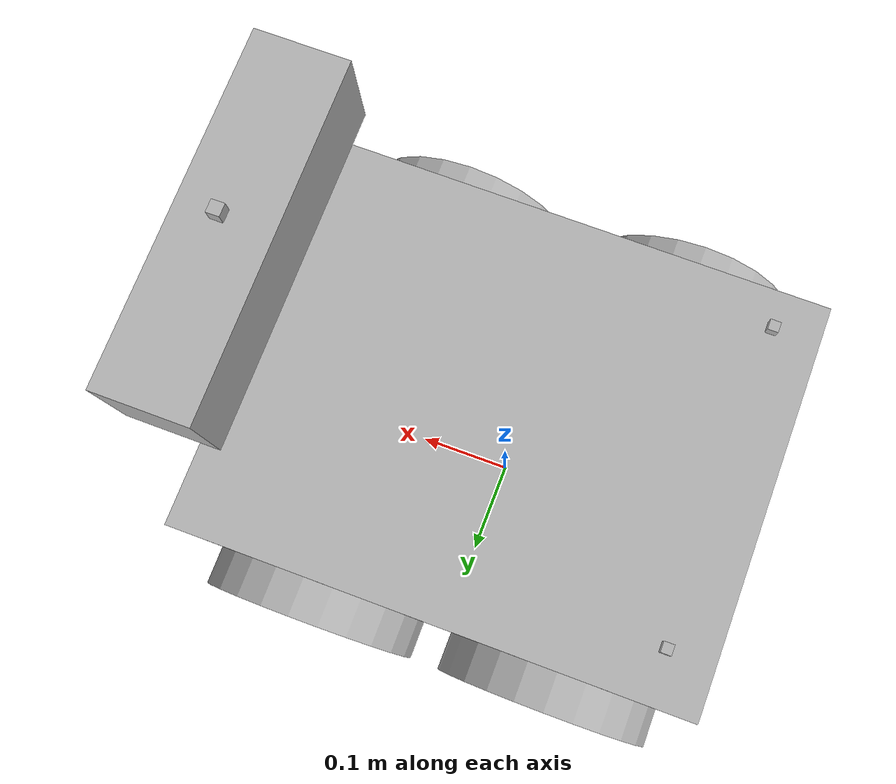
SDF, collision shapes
<?xml version='1.0'?>
<sdf version='1.4'>

  <model name="pioneer3at_robot">

  <pose>0 0 0.180 0 0 0</pose>
    <static>false</static>

    <link name="chassis">
      <inertial>
        <mass>14.0</mass>
        <inertia>
          <ixx>0.3338</ixx>
          <ixy>0.0</ixy>
          <ixz>0.0</ixz>
          <iyy>0.4783</iyy>
          <iyz>0.0</iyz>
          <izz>0.3338</izz>
        </inertia>
      </inertial>
      <collision name="collision">
        <geometry>
          <box>
            <size>0.501 0.400 0.19</size>
          </box>
        </geometry>
      </collision>
      <visual name="visual">
        <geometry>
          <mesh>
            <uri>model://pioneer3at/meshes/chassis.dae</uri>
          </mesh>
        </geometry>
      </visual>
    </link>

    <link name="right_front_wheel">
      <pose>0.125 -0.201 -0.06 1.5707 0 0</pose>
      <collision name="collision">
        <geometry>
          <cylinder>
            <radius>0.110</radius>
            <length>0.075</length>
          </cylinder>
        </geometry>
        <surface>
          <friction>
            <ode>
              <mu>1</mu>
              <mu2>1</mu2>
              <slip1>0.5</slip1>
              <slip2>0</slip2>
            </ode>
          </friction>
        </surface>
      </collision>
      <visual name="visual">
        <geometry>
          <mesh>
            <uri>model://pioneer3at/meshes/wheel.dae</uri>
          </mesh>
        </geometry>
      </visual>
    </link>

    <link name="left_front_wheel">
      <pose>0.125 0.201 -0.06 1.5707 0 0</pose>
      <collision name="collision">
        <geometry>
          <cylinder>
            <radius>0.110</radius>
            <length>0.075</length>
          </cylinder>
        </geometry>
        <surface>
          <friction>
            <ode>
              <mu>1</mu>
              <mu2>1</mu2>
              <slip1>0.5</slip1>
              <slip2>0</slip2>
            </ode>
          </friction>
        </surface>
      </collision>
      <visual name="visual">
        <geometry>
          <mesh>
            <uri>model://pioneer3at/meshes/wheel.dae</uri>
          </mesh>
        </geometry>
      </visual>
    </link>

    <link name="right_rear_wheel">
      <pose>-0.125 -0.201 -0.06 1.5707 0 0</pose>
      <collision name="collision">
        <geometry>
          <cylinder>
            <radius>0.110</radius>
            <length>0.075</length>
          </cylinder>
        </geometry>
        <surface>
          <friction>
            <ode>
              <mu>1</mu>
              <mu2>1</mu2>
              <slip1>0.5</slip1>
              <slip2>0</slip2>
            </ode>
          </friction>
        </surface>
      </collision>
      <visual name="visual">
        <geometry>
          <mesh>
            <uri>model://pioneer3at/meshes/wheel.dae</uri>
          </mesh>
        </geometry>
      </visual>
    </link>

    <link name="left_rear_wheel">
      <pose>-0.125 0.201 -0.06 1.5707 0 0</pose>
      <collision name="collision">
        <geometry>
          <cylinder>
            <radius>0.110</radius>
            <length>0.075</length>
          </cylinder>
        </geometry>
        <surface>
          <friction>
            <ode>
              <mu>1</mu>
              <mu2>1</mu2>
              <slip1>0.5</slip1>
              <slip2>0</slip2>
            </ode>
          </friction>
        </surface>
      </collision>
      <visual name="visual">
        <geometry>
          <mesh>
            <uri>model://pioneer3at/meshes/wheel.dae</uri>
          </mesh>
        </geometry>
      </visual>
    </link>

    <joint type="revolute" name="right_front">
      <pose>0 0 0 0 0 0</pose>
      <child>right_front_wheel</child>
      <parent>chassis</parent>
      <axis>
        <xyz>0 1 0</xyz>
      </axis>
    </joint>
    <joint type="revolute" name="right_rear">
      <pose>0 0 0 0 0 0</pose>
      <child>right_rear_wheel</child>
      <parent>chassis</parent>
      <axis>
        <xyz>0 1 0</xyz>
      </axis>
    </joint>
    <joint type="revolute" name="left_front">
      <pose>0 0 0 0 0 0</pose>
      <child>left_front_wheel</child>
      <parent>chassis</parent>
      <axis>
        <xyz>0 1 0</xyz>
      </axis>
    </joint>
    <joint type="revolute" name="left_rear">
      <pose>0 0 0 0 0 0</pose>
      <child>left_rear_wheel</child>
      <parent>chassis</parent>
      <axis>
        <xyz>0 1 0</xyz>
      </axis>
    </joint>

	<plugin name="RosSkidSteerDrivePlugin" filename="libgazebo_ros_skid_steer_drive.so">
		<updateRate>50.0</updateRate>
	    <robotNamespace></robotNamespace>
	    <leftFrontJoint>left_front</leftFrontJoint>
	    <rightFrontJoint>right_front</rightFrontJoint>
	    <leftRearJoint>left_rear</leftRearJoint>
	    <rightRearJoint>right_rear</rightRearJoint>
	    <wheelSeparation>0.4</wheelSeparation>
	    <wheelDiameter>0.220</wheelDiameter>
	    <robotBaseFrame>base_link</robotBaseFrame>
	    <topicName>cmd_vel</topicName>
	    <broadcastTF>0</broadcastTF>
	    <torque>5.0</torque>
	    <commandTopic>cmd_vel</commandTopic>
	    <odometryTopic>odom</odometryTopic>
	    <odometryFrame>odom</odometryFrame>
	</plugin>

	<plugin name="RosImuPlugin" filename="libpandora_imu_stabilizer_plugin.so">
		<topicName>/sensors/imu</topicName>
		<bodyName>chassis</bodyName>
		<updateRate>50.0</updateRate>
	    <robotNamespace></robotNamespace>
	    <serviceName>default_imu</serviceName>
	    <gaussianNoise>0.0</gaussianNoise>
	    <xyzOffset>0 0 0</xyzOffset>
	    <rpyOffset>0 0 0</rpyOffset>
	    <rollCorrectionJoint>joint_h_hb</rollCorrectionJoint>
	    <pitchCorrectionJoint>joint_hb_ch</pitchCorrectionJoint>
	</plugin>

	<link name="hokuyo_base">
		<pose>0.25 0 0.15 0 0 0</pose>
	</link>

	<include>
		<uri>model://pandora_hokuyo</uri>
		<pose>0.25 0 0.15 0 0 0</pose>
	</include>
	<joint name="joint_h_hb" type="revolute">
	  <child>pandora_hokuyo::laser</child>
	  <parent>hokuyo_base</parent>
	  <axis>
	    <xyz>1 0 0</xyz>
	  </axis>
	</joint>
	<joint name="joint_hb_ch" type="revolute">
	  <child>hokuyo_base</child>
	  <parent>chassis</parent>
	  <axis>
	    <xyz>0 1 0</xyz>
	  </axis>
	</joint>

	<include>
		<uri>model://pandora_kinect</uri>
		<pose>0.2 0 0.33 0 0 0</pose>
	</include>
	<joint name="kinect_joint" type="revolute">
	  <child>pandora_kinect::link</child>
	  <parent>chassis</parent>
	  <axis>
	    <xyz>0 0 1</xyz>
	    <limit>
	      <upper>0</upper>
	      <lower>0</lower>
	    </limit>
	  </axis>
	</joint>

	<include>
		<uri>model://pandora_sonar</uri>
		<name>left_rear_sonar</name>
		<pose>-0.2 0.15 0.13 0 0 3.14</pose>
	</include>
	<joint name="left_rear_sonar_joint" type="revolute">
	  <child>left_rear_sonar::sonar</child>
	  <parent>chassis</parent>
	  <axis>
	    <xyz>0 0 1</xyz>
	    <limit>
	      <upper>0</upper>
	      <lower>0</lower>
	    </limit>
	  </axis>
	</joint>

	<include>
		<uri>model://pandora_sonar</uri>
		<name>right_rear_sonar</name>
		<pose>-0.2 -0.15 0.13 0 0 3.14</pose>
	</include>
	<joint name="right_rear_sonar_joint" type="revolute">
	  <child>right_rear_sonar::sonar</child>
	  <parent>chassis</parent>
	  <axis>
	    <xyz>0 0 1</xyz>
	    <limit>
	      <upper>0</upper>
	      <lower>0</lower>
	    </limit>
	  </axis>
	</joint>

	<include>
		<uri>model://pandora_thermal</uri>
		<pose>0.2 -0.05 0.23 0 0 0</pose>
	</include>
	<joint name="thermal_joint" type="revolute">
	  <child>pandora_thermal::thermal</child>
	  <parent>chassis</parent>
	  <axis>
	    <xyz>0 0 1</xyz>
	    <limit>
	      <upper>0</upper>
	      <lower>0</lower>
	    </limit>
	  </axis>
	</joint>

	<include>
		<uri>model://pandora_co2</uri>
		<pose>0.2 0 0.36 0 0 0</pose>
	</include>
	<joint name="co2_joint" type="revolute">
	  <child>pandora_co2::co2</child>
	  <parent>chassis</parent>
	  <axis>
	    <xyz>0 0 1</xyz>
	    <limit>
	      <upper>0</upper>
	      <lower>0</lower>
	    </limit>
	  </axis>
	</joint>

	<include>
		<uri>model://pandora_microphone</uri>
		<pose>0.2 0 0.38 0 0 0</pose>
	</include>
	<joint name="microphone_joint" type="revolute">
	  <child>pandora_microphone::microphone</child>
	  <parent>chassis</parent>
	  <axis>
	    <xyz>0 0 1</xyz>
	    <limit>
	      <upper>0</upper>
	      <lower>0</lower>
	    </limit>
	  </axis>
	</joint>

  </model>
</sdf>

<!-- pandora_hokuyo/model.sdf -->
<sdf version="1.4">
  <model name="pandora_hokuyo">
    <pose>0 0 0.035 0 0 0</pose>
    <link name="link">
      <inertial>
        <mass>0.1</mass>
      </inertial>
      <visual name="visual">
        <geometry>
          <mesh>
            <uri>model://hokuyo/meshes/hokuyo.dae</uri>
          </mesh>
        </geometry>
      </visual>

      <collision name="collision-base">
        <pose>0 0 -0.0145 0 0 0</pose>
        <geometry>
          <box>
            <size>0.05 0.05 0.041</size>
          </box>
        </geometry>
      </collision>

      <collision name="collision-top">
        <pose>0 0 0.0205 0 0 0</pose>
        <geometry>
          <cylinder>
            <radius>0.021</radius>
            <length>0.029</length>
          </cylinder>
        </geometry>
      </collision>

      <sensor name="laser" type="ray">
        <pose>0.01 0 0.0175 0 -0 0</pose>
        <ray>
          <scan>
            <horizontal>
              <samples>640</samples>
              <resolution>1</resolution>
              <min_angle>-2.26889</min_angle>
              <max_angle>2.268899</max_angle>
            </horizontal>
          </scan>
          <range>
            <min>0.08</min>
            <max>10</max>
            <resolution>0.01</resolution>
          </range>
        </ray>

        <plugin name="laser" filename="libRayPlugin.so" />
        <plugin name="laser2Ros" filename="libgazebo_ros_laser.so">
			<topicName>/slam/scan</topicName>
			<frameName>/laser</frameName>
		</plugin>

        <always_on>1</always_on>
        <update_rate>30</update_rate>
        <visualize>true</visualize>
      </sensor>
    </link>
  </model>
</sdf>

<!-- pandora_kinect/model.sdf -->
<sdf version="1.4">
  <model name="pandora_kinect">
    <pose>0 0 0.036 0 0 0</pose>
    <link name="link">
      <inertial>
        <mass>0.1</mass>
      </inertial>

      <collision name="collision">
        <geometry>
          <box>
            <size>0.073000 0.276000 0.072000</size>
          </box>
        </geometry>
      </collision>
      <visual name="visual">
        <geometry>
          <mesh>
            <uri>model://kinect/meshes/kinect.dae</uri>
          </mesh>
        </geometry>
      </visual>
      <sensor name="kinect" type="depth">
        <update_rate>20</update_rate>
        <camera>
          <horizontal_fov>1.047198</horizontal_fov>
          <image>
            <width>640</width>
            <height>480</height>
            <format>R8G8B8</format>
          </image>
          <clip>
            <near>0.05</near>
            <far>3</far>
          </clip>
        </camera>

        <plugin name="depth2ros" filename="libgazebo_ros_openni_kinect.so">
			<pointCloudTopicName>/cloud_in</pointCloudTopicName>
			<frameName>kinect</frameName>
			<cameraName>kinect</cameraName>
			<imageTopicName>image</imageTopicName>
			<depthImageTopicName>depth/image</depthImageTopicName>
			<depthImageCameraInfoTopicName>depth/image/info</depthImageCameraInfoTopicName>
			<pointCloudCutoff>0.4</pointCloudCutoff>
		</plugin>

      </sensor>
    </link>
  </model>
</sdf>

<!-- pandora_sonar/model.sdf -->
<sdf version="1.4">
  <model name="pandora_sonar">
    <pose>0 0 0.036 0 0 0</pose>
    <link name="sonar">
      <inertial>
        <mass>0.001</mass>
      </inertial>

      <collision name="collision">
        <geometry>
          <box>
            <size>0.01 0.01 0.01</size>
          </box>
        </geometry>
      </collision>
      <visual name="visual">
        <geometry>
          <mesh>
            <uri>model://pandora_sonar/meshes/max_sonar_ez4.dae</uri>
          </mesh>
        </geometry>
      </visual>

      <sensor name="sonar" type="ray">
        <pose>0.01 0 0.0175 0 -0 0</pose>
        <ray>
          <scan>
            <horizontal>
              <samples>10</samples>
              <resolution>1</resolution>
              <min_angle>-0.01</min_angle>
              <max_angle>0.01</max_angle>
            </horizontal>
            <vertical>
              <samples>10</samples>
              <resolution>1</resolution>
              <min_angle>-0.1</min_angle>
              <max_angle>0.1</max_angle>
            </vertical>
          </scan>
          <range>
            <min>0.1</min>
            <max>2.5</max>
            <resolution>0.01</resolution>
          </range>
        </ray>

        <always_on>1</always_on>
        <update_rate>10</update_rate>
        <visualize>true</visualize>

        <plugin name="sonar2ros" filename="libpandora_sonar_plugin.so">
			<topicName>/sensors/sonar</topicName>
			<updateRate>10</updateRate>
			<gaussianNoise>0.0</gaussianNoise>
			<frameName>rear_sonar</frameName>
			<robotNamespace></robotNamespace>
		</plugin>

      </sensor>
    </link>
  </model>
</sdf>

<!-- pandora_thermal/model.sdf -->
<sdf version="1.4">
  <model name="pandora_thermal">
    <pose>0 0 0.036 0 0 0</pose>

      <link name="thermal">
        <inertial>
			<mass>0.1</mass>
		</inertial>
        <visual name="visual">
          <geometry>
            <mesh>
				<uri>model://pandora_thermal/meshes/thermal_small.dae</uri>
			</mesh>
          </geometry>
        </visual>
        <collision name="collision">
          <geometry>
            <box>
	            <size>0.01 0.01 0.01</size>
	        </box>
          </geometry>
        </collision>

      <sensor name="thermal" type="camera">
        <camera>
          <horizontal_fov>0.5</horizontal_fov>
          <image>
            <width>320</width>
            <height>240</height>
          </image>
          <clip>
            <near>0.1</near>
            <far>2</far>
          </clip>
        </camera>
        <always_on>1</always_on>
        <update_rate>30</update_rate>
        <visualize>false</visualize>
        <plugin name="thermal2ros" filename="libpandora_thermal_plugin.so">
			<frameName>thermal</frameName>
			<topicName>sensors/thermal</topicName>
		</plugin>
      </sensor>
    </link>
  </model>
</sdf>

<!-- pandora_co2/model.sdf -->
<sdf version="1.4">
  <model name="pandora_co2">
    <pose>0 0 0.036 0 0 0</pose>

      <link name="co2">
        <inertial>
			<mass>0.1</mass>
		</inertial>
        <visual name="visual">
          <geometry>
            <mesh>
				<uri>model://pandora_co2/meshes/co2_small.dae</uri>
			</mesh>
          </geometry>
        </visual>
        <collision name="collision">
          <geometry>
            <box>
	            <size>0.01 0.01 0.01</size>
	        </box>
          </geometry>
        </collision>

      <sensor name="co2" type="camera">
        <camera>
          <horizontal_fov>1.5</horizontal_fov>
          <image>
            <width>640</width>
            <height>480</height>
          </image>
          <clip>
            <near>0.1</near>
            <far>0.8</far>
          </clip>
        </camera>
        <always_on>1</always_on>
        <update_rate>5</update_rate>
        <visualize>false</visualize>
        <plugin name="co2ros" filename="libpandora_co2_plugin.so">
			<frameName>co2</frameName>
			<topicName>sensors/co2</topicName>
		</plugin>
      </sensor>
    </link>
  </model>
</sdf>

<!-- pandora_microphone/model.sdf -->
<sdf version="1.4">
  <model name="pandora_microphone">
    <pose>0 0 0.036 0 0 0</pose>

      <link name="microphone">
        <inertial>
			<mass>0.1</mass>
		</inertial>
        <visual name="visual">
          <geometry>
            <mesh>
				<uri>model://pandora_microphone/meshes/microphone_small.dae</uri>
			</mesh>
          </geometry>
        </visual>
        <collision name="collision">
          <geometry>
            <box>
	            <size>0.01 0.01 0.01</size>
	        </box>
          </geometry>
        </collision>

      <sensor name="microphone" type="camera">
        <camera>
          <horizontal_fov>1.5</horizontal_fov>
          <image>
            <width>640</width>
            <height>480</height>
          </image>
          <clip>
            <near>0.1</near>
            <far>2</far>
          </clip>
        </camera>
        <always_on>1</always_on>
        <update_rate>10</update_rate>
        <visualize>false</visualize>
        <plugin name="microphone2ros" filename="libpandora_microphone_plugin.so">
			<frameName>sound</frameName>
			<topicName>sensors/sound</topicName>
		</plugin>
      </sensor>
    </link>
  </model>
</sdf>
